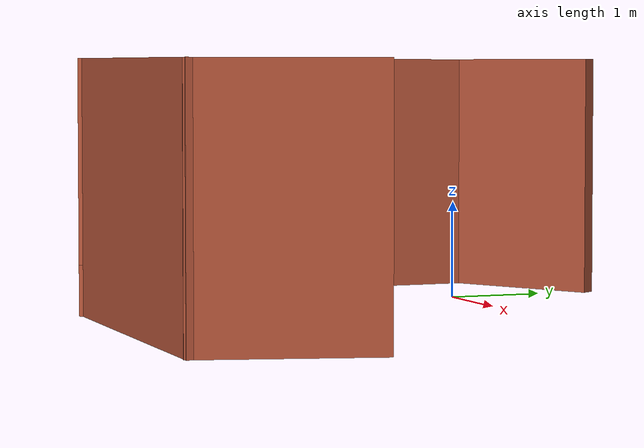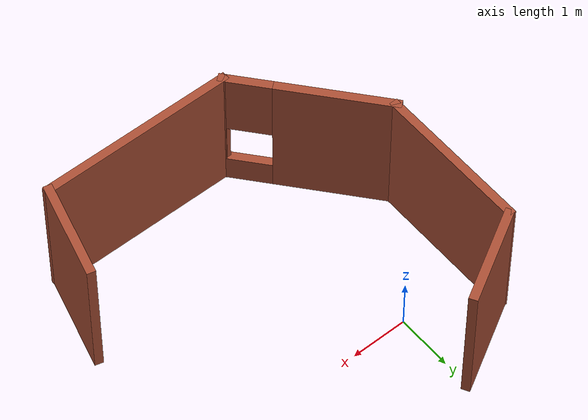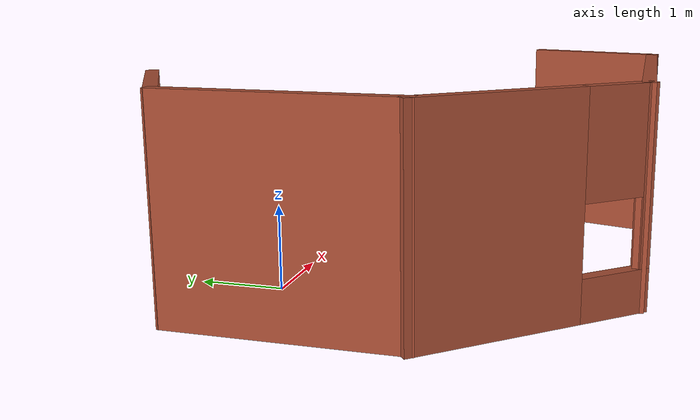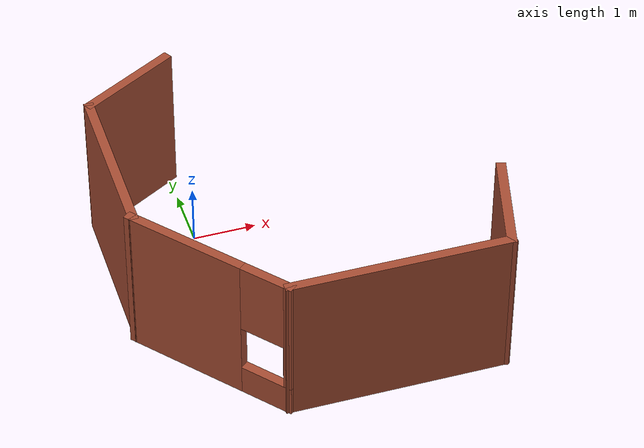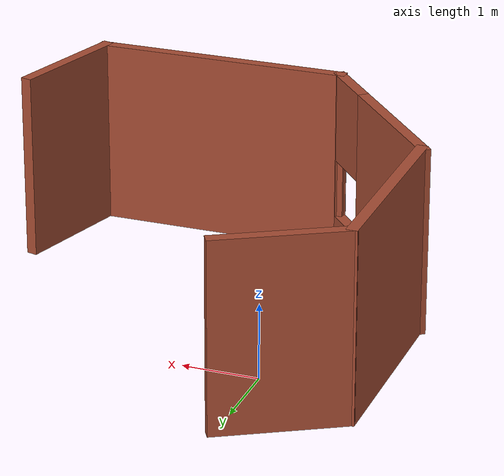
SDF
<?xml version='1.0'?>
<sdf version='1.7'>
  <model name='my_building'>
    <pose>1.33974 -1.24495 0 0 -0 0</pose>
    <link name='Wall_0'>
      <collision name='Wall_0_Collision'>
        <geometry>
          <box>
            <size>2.75 0.15 2.5</size>
          </box>
        </geometry>
        <pose>0 0 1.25 0 -0 0</pose>
      </collision>
      <visual name='Wall_0_Visual'>
        <pose>0 0 1.25 0 -0 0</pose>
        <geometry>
          <box>
            <size>2.75 0.15 2.5</size>
          </box>
        </geometry>
        <material>
          <script>
            <uri>file://media/materials/scripts/gazebo.material</uri>
            <name>Gazebo/Bricks</name>
          </script>
          <ambient>1 1 1 1</ambient>
        </material>
        <meta>
          <layer>0</layer>
        </meta>
      </visual>
      <pose>-2.73382 0.637661 0 0 -0 -1.5708</pose>
    </link>
    <link name='Wall_1'>
      <pose>-1.87514 -1.71231 0 0 -0 -0.870664</pose>
      <visual name='Wall_1_Visual_0'>
        <pose>-0.43602 0 1.25 0 -0 0</pose>
        <geometry>
          <box>
            <size>2.02384 0.15 2.5</size>
          </box>
        </geometry>
        <material>
          <script>
            <uri>file://media/materials/scripts/gazebo.material</uri>
            <name>Gazebo/Bricks</name>
          </script>
          <ambient>1 1 1 1</ambient>
        </material>
        <meta>
          <layer>0</layer>
        </meta>
      </visual>
      <collision name='Wall_1_Collision_0'>
        <geometry>
          <box>
            <size>2.02384 0.15 2.5</size>
          </box>
        </geometry>
        <pose>-0.43602 0 1.25 0 -0 0</pose>
      </collision>
      <visual name='Wall_1_Visual_1'>
        <pose>1.01192 0 0.25 0 -0 0</pose>
        <geometry>
          <box>
            <size>0.872041 0.15 0.5</size>
          </box>
        </geometry>
        <material>
          <script>
            <uri>file://media/materials/scripts/gazebo.material</uri>
            <name>Gazebo/Bricks</name>
          </script>
          <ambient>1 1 1 1</ambient>
        </material>
        <meta>
          <layer>0</layer>
        </meta>
      </visual>
      <collision name='Wall_1_Collision_1'>
        <geometry>
          <box>
            <size>0.872041 0.15 0.5</size>
          </box>
        </geometry>
        <pose>1.01192 0 0.25 0 -0 0</pose>
      </collision>
      <visual name='Wall_1_Visual_2'>
        <pose>1.3825 0 1.5 0 -0 0</pose>
        <geometry>
          <box>
            <size>0.130883 0.15 2</size>
          </box>
        </geometry>
        <material>
          <script>
            <uri>file://media/materials/scripts/gazebo.material</uri>
            <name>Gazebo/Bricks</name>
          </script>
          <ambient>1 1 1 1</ambient>
        </material>
        <meta>
          <layer>0</layer>
        </meta>
      </visual>
      <collision name='Wall_1_Collision_2'>
        <geometry>
          <box>
            <size>0.130883 0.15 2</size>
          </box>
        </geometry>
        <pose>1.3825 0 1.5 0 -0 0</pose>
      </collision>
      <visual name='Wall_1_Visual_3'>
        <pose>0.94648 0 1.9 0 -0 0</pose>
        <geometry>
          <box>
            <size>0.741158 0.15 1.2</size>
          </box>
        </geometry>
        <material>
          <script>
            <uri>file://media/materials/scripts/gazebo.material</uri>
            <name>Gazebo/Bricks</name>
          </script>
          <ambient>1 1 1 1</ambient>
        </material>
        <meta>
          <layer>0</layer>
        </meta>
      </visual>
      <collision name='Wall_1_Collision_3'>
        <geometry>
          <box>
            <size>0.741158 0.15 1.2</size>
          </box>
        </geometry>
        <pose>0.94648 0 1.9 0 -0 0</pose>
      </collision>
    </link>
    <link name='Wall_3'>
      <collision name='Wall_3_Collision'>
        <geometry>
          <box>
            <size>1.75 0.15 2.5</size>
          </box>
        </geometry>
        <pose>0 0 1.25 0 -0 0</pose>
      </collision>
      <visual name='Wall_3_Visual'>
        <pose>0 0 1.25 0 -0 0</pose>
        <geometry>
          <box>
            <size>1.75 0.15 2.5</size>
          </box>
        </geometry>
        <material>
          <script>
            <uri>file://media/materials/scripts/gazebo.material</uri>
            <name>Gazebo/Bricks</name>
          </script>
          <ambient>1 1 1 1</ambient>
        </material>
        <meta>
          <layer>0</layer>
        </meta>
      </visual>
      <pose>-2.0164 2.3655 0 0 -0 0.523599</pose>
    </link>
    <link name='Wall_5'>
      <collision name='Wall_5_Collision'>
        <geometry>
          <box>
            <size>3.5 0.15 2.5</size>
          </box>
        </geometry>
        <pose>0 0 1.25 0 -0 0</pose>
      </collision>
      <visual name='Wall_5_Visual'>
        <pose>0 0 1.25 0 -0 0</pose>
        <geometry>
          <box>
            <size>3.5 0.15 2.5</size>
          </box>
        </geometry>
        <material>
          <script>
            <uri>file://media/materials/scripts/gazebo.material</uri>
            <name>Gazebo/Bricks</name>
          </script>
          <ambient>1 1 1 1</ambient>
        </material>
        <meta>
          <layer>0</layer>
        </meta>
      </visual>
      <pose>0.68447 -2.76227 0 0 -0 0</pose>
    </link>
    <link name='Wall_6'>
      <collision name='Wall_6_Collision'>
        <geometry>
          <box>
            <size>1.75 0.15 2.5</size>
          </box>
        </geometry>
        <pose>0 0 1.25 0 -0 0</pose>
      </collision>
      <visual name='Wall_6_Visual'>
        <pose>0 0 1.25 0 -0 0</pose>
        <geometry>
          <box>
            <size>1.75 0.15 2.5</size>
          </box>
        </geometry>
        <material>
          <script>
            <uri>file://media/materials/scripts/gazebo.material</uri>
            <name>Gazebo/Bricks</name>
          </script>
          <ambient>1 1 1 1</ambient>
        </material>
        <meta>
          <layer>0</layer>
        </meta>
      </visual>
      <pose>2.56652 -1.98953 0 0 -0 1.309</pose>
    </link>
    <static>1</static>
  </model>
</sdf>
